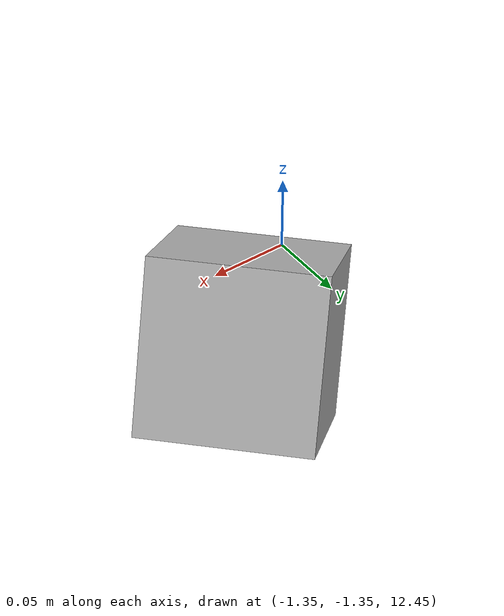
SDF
<?xml version="1.0" ?>
<sdf version="1.4">
  <world name="default">
    <include>
      <uri>model://ground_plane</uri>
    </include>
    <include>
      <uri>model://sun</uri>
    </include>
  <model name="camera">
    <link name="link">
      <gravity>0</gravity>
      <pose>-1.25 -1.25 12.5 0 1.05 0.78</pose>
      <inertial>
        <mass>0.1</mass>
      </inertial>
      <collision name="collision">
        <geometry>
          <box>
            <size>0.1 0.1 0.1</size>
          </box>
        </geometry>
      </collision>
      <visual name="visual">
        <geometry>
          <box>
            <size>0.1 0.1 0.1</size>
          </box>
        </geometry>
      </visual>
      <sensor name="camera" type="camera">
        <camera>
          <horizontal_fov>1.047</horizontal_fov>
          <image>
            <width>640</width>
            <height>480</height>
          </image>
          <clip>
            <near>0.1</near>
            <far>100</far>
          </clip>
          <save enabled="true">
            <path>/tmp</path>
          </save>
        </camera>
        <always_on>1</always_on>
        <update_rate>30</update_rate>
        <visualize>true</visualize>
      </sensor>
    </link>
  </model>
  </world>
</sdf>
